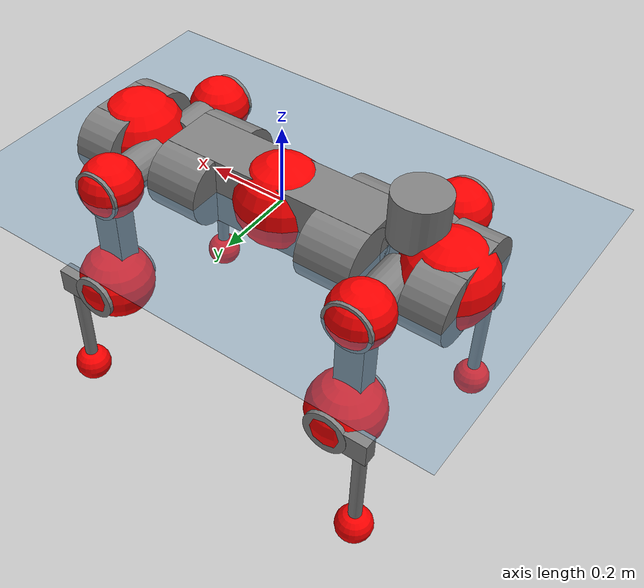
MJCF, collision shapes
<mujoco model="anymal_c">
  <compiler angle="radian" assetdir="assets" balanceinertia="true" inertiafromgeom="false"/>

  <option timestep="0.005" density="1.2" viscosity="2e-05"/>

  <size nkey="1"/>

  <visual>
    <quality shadowsize="8192"/>
    <map shadowclip="0.5"/>
  </visual>

  <default>
    <default class="/">
      <material specular="0" shininess="0.25"/>
      <geom contype="0" conaffinity="0" group="1" solref="-1000 -80"/>
      <site size="0.01 0.005 0.005" group="5"/>
      <general forcelimited="true" forcerange="-80 80" biastype="affine" gainprm="80" biasprm="0 -80 -2"/>
      <default class="anymal_c">
        <joint armature="0.01" damping="0.01" frictionloss="0.1"/>
        <default class="visual">
          <geom type="mesh" group="2"/>
          <default class="visual_zflip"/>
        </default>
        <default class="collision">
          <geom type="cylinder" group="3"/>
          <default class="foot">
            <geom size="0.03 0 0" type="sphere" condim="6" priority="1" friction="0.8 0.02 0.01" solimp="0.015 1 0.03"/>
          </default>
        </default>
      </default>
      <default class="reward_collision_sphere">
        <geom group="5" rgba="1 0 0 1"/>
      </default>
    </default>
  </default>

  <asset>
    <texture type="skybox" colorspace="auto" name="//unnamed_texture_0" builtin="gradient" rgb1="0.95 0.95 0.95" rgb2="0.95 0.95 0.95" width="100" height="600"/>
    <texture type="2d" colorspace="auto" name="texplane" builtin="checker" rgb1="0.345 0.575 0.748" rgb2="0.345 0.575 0.748" markrgb="1 1 1" width="512" height="512"/>
    <texture type="2d" colorspace="linear" name="base" file="base.png"/>
    <texture type="2d" colorspace="linear" name="top_shell" file="top_shell.png"/>
    <texture type="2d" colorspace="linear" name="bottom_shell" file="bottom_shell.png"/>
    <texture type="2d" colorspace="linear" name="remote" file="remote.png"/>
    <texture type="2d" colorspace="linear" name="hatch" file="hatch.png"/>
    <texture type="2d" colorspace="linear" name="handle" file="handle.png"/>
    <texture type="2d" colorspace="linear" name="face" file="face.png"/>
    <texture type="2d" colorspace="linear" name="battery" file="battery.png"/>
    <texture type="2d" colorspace="linear" name="lidar_cage" file="lidar_cage.png"/>
    <texture type="2d" colorspace="linear" name="depth_camera" file="depth_camera.png"/>
    <texture type="2d" colorspace="linear" name="wide_angle_camera" file="wide_angle_camera.png"/>
    <texture type="2d" colorspace="linear" name="lidar" file="lidar.png"/>
    <texture type="2d" colorspace="linear" name="drive" file="drive.png"/>
    <texture type="2d" colorspace="linear" name="hip_l" file="hip_l.png"/>
    <texture type="2d" colorspace="linear" name="shank_l" file="shank_l.png"/>
    <texture type="2d" colorspace="linear" name="foot" file="foot.png"/>
    <texture type="2d" colorspace="linear" name="thigh" file="thigh.png"/>
    <texture type="2d" colorspace="linear" name="shank_r" file="shank_r.png"/>
    <texture type="2d" colorspace="linear" name="hip_r" file="hip_r.png"/>
    <material name="MatPlane" class="/" texture="texplane" texuniform="true" texrepeat="2 2" specular="0.9" shininess="0.5"/>
    <material name="black_plastic" class="/" rgba="0.007 0.007 0.007 1"/>
    <material name="green" class="/" rgba="0.052 0.178 0.033 1"/>
    <material name="red" class="/" rgba="0.178 0.006 0.005 1"/>
    <material name="yellow" class="/" rgba="0.178 0.119 0.006 1"/>
    <material name="lwl" class="/" rgba="0.8 0.8 0.8 1"/>
    <material name="base" class="/" texture="base"/>
    <material name="top_shell" class="/" texture="top_shell"/>
    <material name="bottom_shell" class="/" texture="bottom_shell"/>
    <material name="hip_l" class="/" texture="hip_l"/>
    <material name="thigh" class="/" texture="thigh"/>
    <material name="shank_l" class="/" texture="shank_l"/>
    <material name="foot" class="/" texture="foot"/>
    <material name="hip_r" class="/" texture="hip_r"/>
    <material name="shank" class="/" texture="shank_r"/>
    <material name="hatch" class="/" texture="hatch"/>
    <material name="remote" class="/" texture="remote"/>
    <material name="handle" class="/" texture="handle"/>
    <material name="face" class="/" texture="face"/>
    <material name="depth_camera" class="/" texture="depth_camera"/>
    <material name="wide_angle_camera" class="/" texture="wide_angle_camera"/>
    <material name="battery" class="/" texture="battery"/>
    <material name="lidar_cage" class="/" texture="lidar_cage"/>
    <material name="lidar" class="/" texture="lidar"/>
    <material name="drive" class="/" texture="drive"/>
    <mesh name="base_0" class="/" file="base_0.obj"/>
    <mesh name="base_1" class="/" file="base_1.obj"/>
    <mesh name="base_2" class="/" file="base_2.obj"/>
    <mesh name="base_3" class="/" file="base_3.obj"/>
    <mesh name="base_4" class="/" file="base_4.obj"/>
    <mesh name="base_5" class="/" file="base_5.obj"/>
    <mesh name="top_shell" class="/" file="top_shell.obj"/>
    <mesh name="bottom_shell" class="/" file="bottom_shell.obj"/>
    <mesh name="remote" class="/" file="remote.obj"/>
    <mesh name="handle" class="/" file="handle.obj"/>
    <mesh name="face" class="/" file="face.obj"/>
    <mesh name="wide_angle_camera" class="/" file="wide_angle_camera.obj"/>
    <mesh name="depth_camera" class="/" file="depth_camera.obj"/>
    <mesh name="battery" class="/" file="battery.obj"/>
    <mesh name="lidar_cage" class="/" file="lidar_cage.obj"/>
    <mesh name="lidar" class="/" file="lidar.obj"/>
    <mesh name="drive" class="/" file="drive.obj"/>
    <mesh name="hip_l" class="/" file="hip_l.obj"/>
    <mesh name="thigh" class="/" file="thigh.obj"/>
    <mesh name="shank_l" class="/" file="shank_l.obj"/>
    <mesh name="foot" class="/" file="foot.obj"/>
    <mesh name="hip_r" class="/" file="hip_r.obj"/>
    <mesh name="hatch" class="/" file="hatch.obj"/>
    <mesh name="shank_r" class="/" file="shank_r.obj"/>
  </asset>

  <worldbody>
    <geom name="floor" class="/" size="100 100 0.125" type="plane" group="0" material="MatPlane"/>
    <light name="toplight_shadow" class="/" pos="0 0 5" dir="0.0990148 0.0990148 -0.990148" type="directional" ambient="0.04 0.04 0.04" diffuse="0.55 0.55 0.55" specular="0.12 0.12 0.12"/>
    <light name="toplight_fill" class="/" pos="0 0 5" dir="0.0990148 0.0990148 -0.990148" type="directional" castshadow="false" ambient="0.04 0.04 0.04" diffuse="0.3 0.3 0.3" specular="0.08 0.08 0.08"/>
    <body name="trunk" childclass="anymal_c" pos="-0.0001964 -0.000405607 0.000351062" quat="1 -2.12175e-05 1.95945e-05 -7.2584e-06">
      <inertial pos="0.00197614 -0.00090967 0.0499039" quat="0.496519 0.49397 0.508066 0.50133" mass="17.8226" diaginertia="0.578416 0.466806 0.227858"/>
      <joint name="//unnamed_joint_0" type="free" armature="0" damping="0" frictionloss="0"/>
      <geom name="//unnamed_geom_1" class="visual" material="green" mesh="base_0"/>
      <geom name="//unnamed_geom_2" class="visual" material="yellow" mesh="base_1"/>
      <geom name="//unnamed_geom_3" class="visual" material="red" mesh="base_2"/>
      <geom name="//unnamed_geom_4" class="visual" material="black_plastic" mesh="base_3"/>
      <geom name="//unnamed_geom_5" class="visual" material="lwl" mesh="base_4"/>
      <geom name="//unnamed_geom_6" class="visual" material="base" mesh="base_5"/>
      <geom name="trunk_1" class="collision" size="0.284 0.0685517 0.0881379" type="box"/>
      <geom name="trunk_2" class="collision" size="0.0881379 0.071" pos="0.213519 0.0660069 0" quat="0.707107 0 0.707107 0"/>
      <geom name="trunk_3" class="collision" size="0.0881379 0.071" pos="-0.213519 0.0660069 0" quat="0.707107 0 0.707107 0"/>
      <geom name="trunk_4" class="collision" size="0.0881379 0.071" pos="0.213519 -0.0660069 0" quat="0.707107 0 0.707107 0"/>
      <geom name="trunk_5" class="collision" size="0.0881379 0.071" pos="-0.213519 -0.0660069 0" quat="0.707107 0 0.707107 0"/>
      <geom name="//unnamed_geom_12" class="visual" material="top_shell" mesh="top_shell"/>
      <geom name="//unnamed_geom_13" class="visual" material="bottom_shell" mesh="bottom_shell"/>
      <geom name="//unnamed_geom_14" class="visual" material="remote" mesh="remote"/>
      <geom name="//unnamed_geom_15" class="visual" material="handle" mesh="handle"/>
      <geom name="//unnamed_geom_16" class="visual" pos="0.406913 0 0" quat="1 0 0 0" material="face" mesh="face"/>
      <geom name="trunk_6" class="collision" size="0.0538621 0.0685517 0.0881379" pos="0.460907 0 0" type="box"/>
      <geom name="//unnamed_geom_18" class="collision" size="0.0881379 0.0538621" pos="0.460907 0.0660069 0" quat="0.707107 0 0.707107 0"/>
      <geom name="//unnamed_geom_19" class="collision" size="0.0881379 0.0538621" pos="0.460907 -0.0660069 0" quat="0.707107 0 0.707107 0"/>
      <geom name="//unnamed_geom_20" class="visual" pos="0.453202 0 -0.0298277" quat="0.965926 0 0.258819 0" material="depth_camera" mesh="depth_camera"/>
      <geom name="//unnamed_geom_21" class="visual" pos="0.50361 0 0.0151688" material="wide_angle_camera" mesh="wide_angle_camera"/>
      <geom name="//unnamed_geom_22" class="visual_zflip" pos="-0.406913 0 0" quat="0 0 0 1" material="face" mesh="face"/>
      <geom name="trunk_7" class="collision" size="0.0538621 0.0685517 0.0881379" pos="-0.460907 0 0" quat="0 0 0 1" type="box"/>
      <geom name="//unnamed_geom_24" class="collision" size="0.0881379 0.0538621" pos="-0.460907 -0.0660069 0" quat="0 -0.707107 0 0.707107"/>
      <geom name="//unnamed_geom_25" class="collision" size="0.0881379 0.0538621" pos="-0.460907 0.0660069 0" quat="0 -0.707107 0 0.707107"/>
      <geom name="//unnamed_geom_26" class="visual" pos="-0.453202 0 -0.0298277" quat="0 -0.258819 0 0.965926" material="depth_camera" mesh="depth_camera"/>
      <geom name="//unnamed_geom_27" class="visual_zflip" pos="-0.50361 0 0.0151688" quat="0 0 0 1" material="wide_angle_camera" mesh="wide_angle_camera"/>
      <geom name="//unnamed_geom_28" class="visual" material="battery" mesh="battery"/>
      <geom name="//unnamed_geom_29" class="visual" pos="0 0.0715913 0.0291957" quat="0.683013 -0.183013 0.183013 0.683013" material="depth_camera" mesh="depth_camera"/>
      <geom name="//unnamed_geom_30" class="visual" pos="0 -0.0715913 0.0291957" quat="0.683013 0.183013 0.183013 -0.683013" material="depth_camera" mesh="depth_camera"/>
      <geom name="//unnamed_geom_31" class="visual" pos="-0.357338 0 0.074476" quat="1 0 0 0" material="lidar_cage" mesh="lidar_cage"/>
      <geom name="trunk_8" class="collision" size="0.0685517 0.0587586" pos="-0.357338 0 0.135273"/>
      <geom name="//unnamed_geom_33" class="visual" pos="-0.357338 -1.52204e-05 0.144088" quat="0.707107 0 0 -0.707107" material="lidar" mesh="lidar"/>
      <geom name="//unnamed_geom_34" class="visual" pos="0.294411 0.0980923 -1.21308e-09" quat="0.258819 0.965926 0 0" material="drive" mesh="drive"/>
      <geom name="//unnamed_geom_35" class="visual" pos="0.294411 -0.0980923 1.21308e-09" quat="0.258819 -0.965926 0 0" material="drive" mesh="drive"/>
      <geom name="//unnamed_geom_36" class="visual" pos="-0.294411 0.0980923 1.21308e-09" quat="0 0 0.965926 -0.258819" material="drive" mesh="drive"/>
      <geom name="//unnamed_geom_37" class="visual" pos="-0.294411 -0.0980923 -1.21308e-09" quat="0 0 -0.965926 -0.258819" material="drive" mesh="drive"/>
      <geom name="//unnamed_geom_38" class="visual" pos="0.113877 0 0.0739693" quat="1 0 0 0" material="hatch" mesh="hatch"/>
      <geom name="//unnamed_geom_39" class="reward_collision_sphere" size="0.117517"/>
      <geom name="//unnamed_geom_40" class="reward_collision_sphere" size="0.117517" pos="0.441764 0 0"/>
      <geom name="//unnamed_geom_41" class="reward_collision_sphere" size="0.117517" pos="-0.441764 0 0"/>
      <site name="imu" pos="0.245478 0.00416922 0.0449048" size="0.0097931"/>
      <camera name="track" pos="0 -1.88591 0" quat="0.707107 0.707107 0 0" mode="trackcom"/>
      <camera name="ego_camera" pos="0.441764 0 -0.0405311" quat="-0.5 -0.5 0.5 0.5"/>
      <body name="LF_HIP" pos="0.294565 0.100607 0.00126915" quat="0.258982 0.965882 -0.000196577 7.26851e-05">
        <inertial pos="0.0551711 -0.0142425 -0.00925127" quat="-0.128158 0.710839 -0.133324 0.678607" mass="2.61034" diaginertia="0.00533456 0.00366627 0.00354191"/>
        <joint name="LF_HAA" pos="0 0 0" axis="0.999997 0.00216584 -0.000952044" range="-0.676859 0.471012" armature="0.00985565" damping="0.00515308" frictionloss="0.0966358"/>
        <geom name="//unnamed_geom_42" class="visual" pos="0 -7.136e-05 1.17208e-05" quat="0.258819 -0.965926 0 0" material="hip_l" mesh="hip_l"/>
        <geom name="//unnamed_geom_43" class="visual" pos="0.0588036 -0.070768 -0.0413781" quat="0.183013 -0.683013 0.683013 0.183013" material="drive" mesh="drive"/>
        <geom name="//unnamed_geom_44" class="collision" size="0.0489655 0.0685517" pos="0.0588036 -0.0112776 -0.00699669" quat="-0.353553 -0.612372 0.612372 -0.353553"/>
        <body name="LF_THIGH" pos="0.059113 -0.0669571 -0.0422561" quat="0.183015 -0.683018 0.683008 0.183005">
          <inertial pos="0.0304965 -0.000514747 -0.248422" quat="0.993633 -0.00344782 -0.0757643 0.0833104" mass="2.88393" diaginertia="0.0276498 0.0222349 0.00449136"/>
          <joint name="LF_HFE" pos="0 0 0" axis="0.999992 0.00183483 0.00353194" range="-3.16269 3.16844" armature="0.0101336" damping="0.00788154" frictionloss="0.0934629"/>
          <geom name="//unnamed_geom_45" class="visual" pos="0.0007708 1.2146e-06 0" quat="0.707107 0 0 -0.707107" material="thigh" mesh="thigh"/>
          <geom name="//unnamed_geom_46" class="collision" size="0.0636552 0.0391724" pos="0.0392679 0 0" quat="0.5 0.5 -0.5 -0.5"/>
          <geom name="//unnamed_geom_47" class="collision" size="0.0367241 0.0293793 0.13839" pos="0.0294509 0 -0.14319" quat="0.707107 0 0 -0.707107" type="box"/>
          <geom name="//unnamed_geom_48" class="visual" pos="0.0984642 0 -0.288784" quat="1 0 0 0" material="drive" mesh="drive"/>
          <geom name="//unnamed_geom_49" class="collision" size="0.0489655 0.0685517" pos="0.0297454 0 -0.288784" quat="0.707107 0 0.707107 0"/>
          <geom name="//unnamed_geom_50" class="reward_collision_sphere" size="0.0783448" pos="0.0245424 0 0"/>
          <body name="LF_SHANK" pos="0.0995223 -0.00189228 -0.288333" quat="1 -8.00299e-05 -0.000112826 -0.000317999">
            <inertial pos="0.00498318 -0.0577021 -0.0836659" quat="0.992903 -0.116218 -0.00030031 -0.02524" mass="0.550439" diaginertia="0.00925712 0.00705131 0.00117208"/>
            <joint name="LF_KFE" pos="0 0 0" axis="0.999992 -0.00298048 -0.00253494" range="-3.17765 3.14182" armature="0.0100906" damping="0.00962574" frictionloss="0.0986913"/>
            <geom name="//unnamed_geom_51" class="visual" pos="0.000251341 0.00134016 0" quat="0.707107 0 0 -0.707107" material="shank_l" mesh="shank_l"/>
            <geom name="LF_kfe_act" class="collision" size="0.0587586 0.0195862" pos="0.0196339 0 0" quat="0.5 0.5 -0.5 -0.5"/>
            <geom name="//unnamed_geom_53" class="collision" size="0.0563094 0.0330517 0.0186069" pos="0.0196339 -0.054219 0" quat="0.5 0.5 -0.5 -0.5" type="box"/>
            <geom name="//unnamed_geom_54" class="visual" pos="0.0128111 -0.082501 -0.342458" quat="0.382683 0 0 -0.92388" material="foot" mesh="foot"/>
            <geom name="LF_calf" class="collision" size="0.0171379 0.13833" pos="0.0128111 -0.0829329 -0.171229" quat="0.707107 0 0 -0.707107"/>
            <geom name="LF_foot" class="foot" size="0.0300309" pos="0.0128111 -0.0829329 -0.319659" quat="0.707107 0 0 -0.707107"/>
            <geom name="//unnamed_geom_57" class="reward_collision_sphere" size="0.097931" pos="-0.0490848 0 0"/>
            <geom name="//unnamed_geom_58" class="reward_collision_sphere" size="0.0489655" pos="0.0128111 -0.0829329 -0.319659"/>
            <site name="LF_foot" class="foot" pos="0.0128111 -0.0829329 -0.319659" quat="0.707107 0 0 -0.707107" size="0.0097931"/>
          </body>
        </body>
      </body>
      <body name="RF_HIP" pos="0.294748 -0.0982464 0.00129883" quat="0.258705 -0.965956 -4.50472e-05 -1.14595e-05">
        <inertial pos="0.0566026 0.0146256 -0.00856045" quat="0.135293 0.678978 0.128087 0.710125" mass="2.58316" diaginertia="0.00540086 0.0035818 0.00355121"/>
        <joint name="RF_HAA" pos="0 0 0" axis="1 -0.000435691 -0.000238077" range="-0.492944 0.726167" armature="0.00948401" damping="0.00650629" frictionloss="0.0938644"/>
        <geom name="//unnamed_geom_59" class="visual" pos="0 7.13594e-05 1.17208e-05" quat="0.258819 0.965926 0 0" material="hip_r" mesh="hip_r"/>
        <geom name="//unnamed_geom_60" class="visual" pos="0.0588036 0.070768 -0.0413781" quat="0.183013 0.683013 0.683013 -0.183013" material="drive" mesh="drive"/>
        <geom name="//unnamed_geom_61" class="collision" size="0.0489655 0.0685517" pos="0.0588036 0.0112776 -0.00699669" quat="-0.353553 0.612372 0.612372 0.353553"/>
        <body name="RF_THIGH" pos="0.0606765 0.0706679 -0.0434592" quat="0.182687 0.682968 0.683053 -0.183356">
          <inertial pos="0.0312886 -0.00205485 -0.248644" quat="0.992449 -0.00454958 -0.0816003 0.0914628" mass="2.91113" diaginertia="0.0279347 0.0224755 0.00456644"/>
          <joint name="RF_HFE" pos="0 0 0" axis="1 -0.000800624 7.8313e-05" stiffness="0.000100231" range="-3.17517 3.14052" armature="0.010027" damping="0.00849824" frictionloss="0.0977601"/>
          <geom name="//unnamed_geom_62" class="visual" pos="0.0007708 1.2146e-06 0" quat="0.707107 0 0 -0.707107" material="thigh" mesh="thigh"/>
          <geom name="//unnamed_geom_63" class="collision" size="0.0636552 0.0391724" pos="0.0392679 0 0" quat="0.5 0.5 0.5 0.5"/>
          <geom name="//unnamed_geom_64" class="collision" size="0.0367241 0.0293793 0.13839" pos="0.0294509 0 -0.14319" quat="0.707107 0 0 0.707107" type="box"/>
          <geom name="//unnamed_geom_65" class="visual" pos="0.0984642 0 -0.288784" quat="1 0 0 0" material="drive" mesh="drive"/>
          <geom name="//unnamed_geom_66" class="collision" size="0.0489655 0.0685517" pos="0.0297454 0 -0.288784" quat="0.707107 0 0.707107 0"/>
          <geom name="//unnamed_geom_67" class="reward_collision_sphere" size="0.0783448" pos="0.0245424 0 0"/>
          <body name="RF_SHANK" pos="0.0967913 0.00104779 -0.288588" quat="1 0.000492052 7.76975e-05 0.000154698">
            <inertial pos="0.00455662 0.0578607 -0.0816493" quat="0.992806 0.117117 0.00128044 0.0248593" mass="0.554798" diaginertia="0.00926659 0.00688036 0.00118527"/>
            <joint name="RF_KFE" pos="0 0 0" axis="0.999939 -0.00478217 0.00991536" range="-3.13378 3.14125" armature="0.0105379" damping="0.0162586" frictionloss="0.0931846"/>
            <geom name="//unnamed_geom_68" class="visual" pos="0.00025134 -0.00134016 0" quat="0.707107 0 0 0.707107" material="shank" mesh="shank_r"/>
            <geom name="RF_kfe_act" class="collision" size="0.0587586 0.0195862" pos="0.0196339 0 0" quat="0.5 0.5 0.5 0.5"/>
            <geom name="//unnamed_geom_70" class="collision" size="0.0563094 0.0330517 0.0186069" pos="0.0196339 0.054219 0" quat="0.5 0.5 0.5 0.5" type="box"/>
            <geom name="//unnamed_geom_71" class="visual" pos="0.0128112 0.082501 -0.342458" quat="0.382683 0 0 0.92388" material="foot" mesh="foot"/>
            <geom name="RF_calf" class="collision" size="0.0171379 0.13833" pos="0.0128111 0.0829329 -0.171229" quat="0.707107 0 0 0.707107"/>
            <geom name="RF_foot" class="foot" size="0.0302597" pos="0.0128111 0.0829329 -0.319659" quat="0.707107 0 0 0.707107"/>
            <geom name="//unnamed_geom_74" class="reward_collision_sphere" size="0.097931" pos="-0.0490848 0 0"/>
            <geom name="//unnamed_geom_75" class="reward_collision_sphere" size="0.0489655" pos="0.0128111 0.0829329 -0.319659"/>
            <site name="RF_foot" class="foot" pos="0.0128111 0.0829329 -0.319659" quat="0.707107 0 0 0.707107" size="0.0097931"/>
          </body>
        </body>
      </body>
      <body name="LH_HIP" pos="-0.293579 0.0988862 -0.00102906" quat="0.000240423 2.53733e-05 0.966037 -0.258405">
        <inertial pos="0.0558722 0.0134155 -0.00928782" quat="0.133433 0.679372 0.129818 0.709787" mass="2.56206" diaginertia="0.00527223 0.00362452 0.00346156"/>
        <joint name="LH_HAA" pos="0 0 0" axis="0.999999 0.00101343 0.000932013" stiffness="0.000947575" range="-0.491151 0.741534" armature="0.00969859" damping="0.0100559" frictionloss="0.0991509"/>
        <geom name="//unnamed_geom_76" class="visual" pos="0 7.13594e-05 1.17208e-05" quat="-0.258819 -0.965926 0 0" material="hip_r" mesh="hip_r"/>
        <geom name="//unnamed_geom_77" class="visual" pos="0.0588036 0.070768 -0.0413781" quat="0.183013 0.683013 0.683013 -0.183013" material="drive" mesh="drive"/>
        <geom name="//unnamed_geom_78" class="collision" size="0.0489655 0.0685517" pos="0.0588036 0.0112776 -0.00699669" quat="-0.353553 0.612372 0.612372 0.353553"/>
        <body name="LH_THIGH" pos="0.0583453 0.0674784 -0.0443864" quat="0.182945 0.683026 0.683015 -0.183022">
          <inertial pos="0.030536 -0.000616 -0.250454" quat="0.992624 -0.00629791 -0.0791472 0.0916135" mass="2.92469" diaginertia="0.0273756 0.0217566 0.00439889"/>
          <joint name="LH_HFE" pos="0 0 0" axis="0.999971 0.00149194 -0.00751753" range="-3.15244 3.12879" armature="0.0102063" damping="0.00290203" frictionloss="0.0959924"/>
          <geom name="//unnamed_geom_79" class="visual" pos="0.0007708 1.2146e-06 0" quat="0.707107 0 0 -0.707107" material="thigh" mesh="thigh"/>
          <geom name="//unnamed_geom_80" class="collision" size="0.0636552 0.0391724" pos="0.0392679 0 0" quat="0.5 0.5 -0.5 -0.5"/>
          <geom name="//unnamed_geom_81" class="collision" size="0.0367241 0.0293793 0.13839" pos="0.0294509 0 -0.14319" quat="0.707107 0 0 -0.707107" type="box"/>
          <geom name="//unnamed_geom_82" class="visual" pos="0.0984642 0 -0.288784" quat="1 0 0 0" material="drive" mesh="drive"/>
          <geom name="//unnamed_geom_83" class="collision" size="0.0489655 0.0685517" pos="0.0297454 0 -0.288784" quat="0.707107 0 0.707107 0"/>
          <geom name="//unnamed_geom_84" class="reward_collision_sphere" size="0.0783448" pos="0.0245424 0 0"/>
          <body name="LH_SHANK" pos="0.0989806 -0.00262366 -0.290103" quat="1 1.30417e-06 -2.27977e-05 -8.57977e-06">
            <inertial pos="0.00500918 0.0577301 -0.082186" quat="0.993003 0.115365 -0.00108277 0.0251794" mass="0.544637" diaginertia="0.00932131 0.00684084 0.00118486"/>
            <joint name="LH_KFE" pos="0 0 0" axis="0.999988 0.00144675 -0.00463956" range="-3.1072 3.13365" armature="0.0096263" damping="0.0137344" frictionloss="0.0988952"/>
            <geom name="//unnamed_geom_85" class="visual" pos="0.00025134 -0.00134016 0" quat="-0.707107 0 0 -0.707107" material="shank" mesh="shank_r"/>
            <geom name="LH_kfe_act" class="collision" size="0.0587586 0.0195862" pos="0.0196339 0 0" quat="0.5 0.5 -0.5 -0.5"/>
            <geom name="//unnamed_geom_87" class="collision" size="0.0563094 0.0330517 0.0186069" pos="0.0196339 0.054219 0" quat="0.5 0.5 -0.5 -0.5" type="box"/>
            <geom name="//unnamed_geom_88" class="visual" pos="0.0128112 0.082501 -0.342458" quat="-0.382683 0 0 -0.92388" material="foot" mesh="foot"/>
            <geom name="LH_calf" class="collision" size="0.0171379 0.13833" pos="0.0128111 0.0829329 -0.171229" quat="0.707107 0 0 -0.707107"/>
            <geom name="LH_foot" class="foot" size="0.0297007" pos="0.0128111 0.0829329 -0.319659" quat="0.707107 0 0 -0.707107"/>
            <geom name="//unnamed_geom_91" class="reward_collision_sphere" size="0.097931" pos="-0.0490848 0 0"/>
            <geom name="//unnamed_geom_92" class="reward_collision_sphere" size="0.0489655" pos="0.0128111 0.0829329 -0.319659"/>
            <site name="LH_foot" class="foot" pos="0.0128111 0.0829329 -0.319659" quat="0.707107 0 0 -0.707107" size="0.0097931"/>
          </body>
        </body>
      </body>
      <body name="RH_HIP" pos="-0.294611 -0.0984568 0.0012871" quat="-0.000180417 -0.00014555 -0.965966 -0.258669">
        <inertial pos="0.0552963 -0.0136012 -0.00833718" quat="-0.127958 0.709309 -0.134797 0.679954" mass="2.58093" diaginertia="0.00530965 0.00359201 0.0035484"/>
        <joint name="RH_HAA" pos="0 0 0" axis="0.999991 0.00411113 -0.00118662" range="-0.7341 0.463859" armature="0.00974315" damping="0.00955265" frictionloss="0.100274"/>
        <geom name="//unnamed_geom_93" class="visual" pos="0 -7.136e-05 1.17208e-05" quat="-0.258819 0.965926 0 0" material="hip_l" mesh="hip_l"/>
        <geom name="//unnamed_geom_94" class="visual" pos="0.0588036 -0.070768 -0.0413781" quat="-0.183013 0.683013 -0.683013 -0.183013" material="drive" mesh="drive"/>
        <geom name="//unnamed_geom_95" class="collision" size="0.0489655 0.0685517" pos="0.0588036 -0.0112776 -0.00699669" quat="0.353553 0.612372 -0.612372 0.353553"/>
        <body name="RH_THIGH" pos="0.0584671 -0.068016 -0.0432455" quat="-0.182568 0.682615 -0.68343 -0.18338">
          <inertial pos="0.0305578 -0.00149501 -0.24931" quat="0.993153 -0.00502342 -0.0807688 0.0842497" mass="2.89869" diaginertia="0.027899 0.0223688 0.00450207"/>
          <joint name="RH_HFE" pos="0 0 0" axis="0.999977 0.00602686 -0.00303132" range="-3.13511 3.13048" armature="0.00983417" damping="0.00620933" frictionloss="0.0996664"/>
          <geom name="//unnamed_geom_96" class="visual" pos="0.0007708 1.2146e-06 0" quat="0.707107 0 0 -0.707107" material="thigh" mesh="thigh"/>
          <geom name="//unnamed_geom_97" class="collision" size="0.0636552 0.0391724" pos="0.0392679 0 0" quat="0.5 0.5 0.5 0.5"/>
          <geom name="//unnamed_geom_98" class="collision" size="0.0367241 0.0293793 0.13839" pos="0.0294509 0 -0.14319" quat="0.707107 0 0 0.707107" type="box"/>
          <geom name="//unnamed_geom_99" class="visual" pos="0.0984642 0 -0.288784" quat="1 0 0 0" material="drive" mesh="drive"/>
          <geom name="//unnamed_geom_100" class="collision" size="0.0489655 0.0685517" pos="0.0297454 0 -0.288784" quat="0.707107 0 0.707107 0"/>
          <geom name="//unnamed_geom_101" class="reward_collision_sphere" size="0.0783448" pos="0.0245424 0 0"/>
          <body name="RH_SHANK" pos="0.0956412 0.000644343 -0.287782" quat="1 -0.000358487 -5.27203e-05 -0.000499863">
            <inertial pos="0.00757595 -0.0576719 -0.0812498" quat="0.99288 -0.115476 0.00176985 -0.0291728" mass="0.552021" diaginertia="0.00942689 0.00693072 0.00119749"/>
            <joint name="RH_KFE" pos="0 0 0" axis="0.999999 -0.000344326 -0.00169294" range="-3.1364 3.16605" armature="0.00913655" damping="0.00826094" frictionloss="0.0980046"/>
            <geom name="//unnamed_geom_102" class="visual" pos="0.000251341 0.00134016 0" quat="0.707107 0 0 -0.707107" material="shank_l" mesh="shank_l"/>
            <geom name="RH_kfe_act" class="collision" size="0.0587586 0.0195862" pos="0.0196339 0 0" quat="0.5 0.5 0.5 0.5"/>
            <geom name="//unnamed_geom_104" class="collision" size="0.0563094 0.0330517 0.0186069" pos="0.0196339 -0.054219 0" quat="0.5 0.5 0.5 0.5" type="box"/>
            <geom name="//unnamed_geom_105" class="visual" pos="0.0128111 -0.082501 -0.342458" quat="0.382683 0 0 -0.92388" material="foot" mesh="foot"/>
            <geom name="RH_calf" class="collision" size="0.0171379 0.13833" pos="0.0128111 -0.0829329 -0.171229" quat="0.707107 0 0 0.707107"/>
            <geom name="RH_foot" class="foot" size="0.0294117" pos="0.0128111 -0.0829329 -0.319659" quat="0.707107 0 0 0.707107"/>
            <geom name="//unnamed_geom_108" class="reward_collision_sphere" size="0.097931" pos="-0.0490848 0 0"/>
            <geom name="//unnamed_geom_109" class="reward_collision_sphere" size="0.0489655" pos="0.0128111 -0.0829329 -0.319659"/>
            <site name="RH_foot" class="foot" pos="0.0128111 -0.0829329 -0.319659" quat="0.707107 0 0 0.707107" size="0.0097931"/>
          </body>
        </body>
      </body>
    </body>
  </worldbody>

  <contact>
    <pair class="/" geom1="floor" geom2="LF_foot" name="//unnamed_contact_0"/>
    <pair class="/" geom1="floor" geom2="RF_foot" name="//unnamed_contact_1"/>
    <pair class="/" geom1="floor" geom2="LH_foot" name="//unnamed_contact_2"/>
    <pair class="/" geom1="floor" geom2="RH_foot" name="//unnamed_contact_3"/>
  </contact>

  <actuator>
    <general name="LF_HAA" class="/" joint="LF_HAA" forcerange="-85.3415 85.3415" gainprm="80.878" biasprm="0 -80.878 -1.90858"/>
    <general name="LF_HFE" class="/" joint="LF_HFE" forcerange="-80.0572 80.0572" gainprm="80.878" biasprm="0 -80.878 -1.90858"/>
    <general name="LF_KFE" class="/" joint="LF_KFE" forcerange="-78.3946 78.3946" gainprm="80.878" biasprm="0 -80.878 -1.90858"/>
    <general name="RF_HAA" class="/" joint="RF_HAA" forcerange="-83.8273 83.8273" gainprm="80.878" biasprm="0 -80.878 -1.90858"/>
    <general name="RF_HFE" class="/" joint="RF_HFE" forcerange="-84.9003 84.9003" gainprm="80.878" biasprm="0 -80.878 -1.90858"/>
    <general name="RF_KFE" class="/" joint="RF_KFE" forcerange="-78.1645 78.1645" gainprm="80.878" biasprm="0 -80.878 -1.90858"/>
    <general name="LH_HAA" class="/" joint="LH_HAA" forcerange="-77.6262 77.6262" gainprm="80.878" biasprm="0 -80.878 -1.90858"/>
    <general name="LH_HFE" class="/" joint="LH_HFE" forcerange="-78.9924 78.9924" gainprm="80.878" biasprm="0 -80.878 -1.90858"/>
    <general name="LH_KFE" class="/" joint="LH_KFE" forcerange="-81.8 81.8" gainprm="80.878" biasprm="0 -80.878 -1.90858"/>
    <general name="RH_HAA" class="/" joint="RH_HAA" forcerange="-73.643 73.643" gainprm="80.878" biasprm="0 -80.878 -1.90858"/>
    <general name="RH_HFE" class="/" joint="RH_HFE" forcerange="-77.3159 77.3159" gainprm="80.878" biasprm="0 -80.878 -1.90858"/>
    <general name="RH_KFE" class="/" joint="RH_KFE" forcerange="-78.3968 78.3968" gainprm="80.878" biasprm="0 -80.878 -1.90858"/>
  </actuator>

  <sensor>
    <gyro site="imu" name="imu_angular_velocity"/>
    <velocimeter site="imu" name="imu_linear_velocity"/>
    <framelinvel objtype="site" objname="LF_foot" name="LF_foot_global_linear_velocity"/>
    <framelinvel objtype="site" objname="RF_foot" name="RF_foot_global_linear_velocity"/>
    <framelinvel objtype="site" objname="LH_foot" name="LH_foot_global_linear_velocity"/>
    <framelinvel objtype="site" objname="RH_foot" name="RH_foot_global_linear_velocity"/>
  </sensor>

  <keyframe>
    <key name="home" qpos="0 0 0.55 1 0 0 0 0 0.4 -0.8 0 -0.4 0.8 0 -0.4 0.8 0 0.4 -0.8"/>
  </keyframe>
</mujoco>
